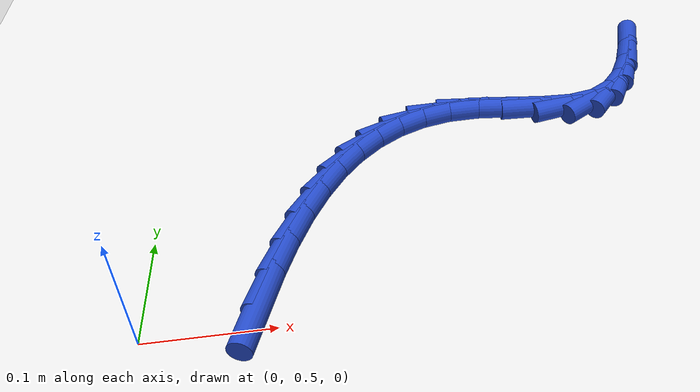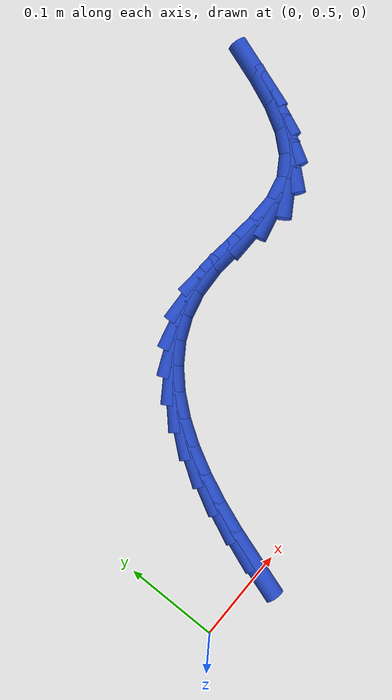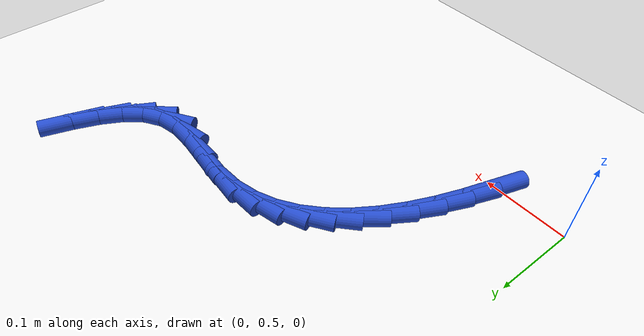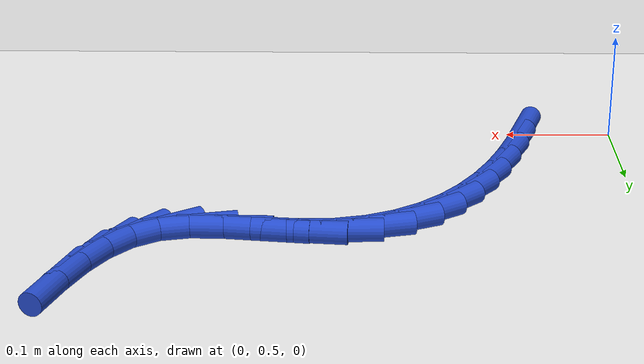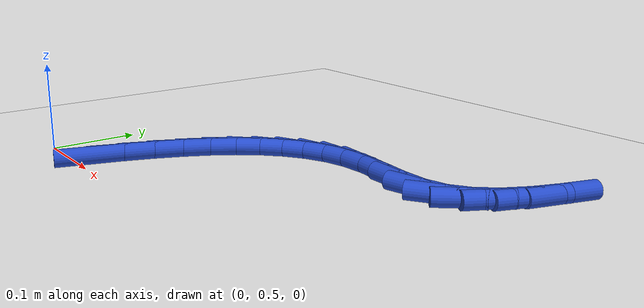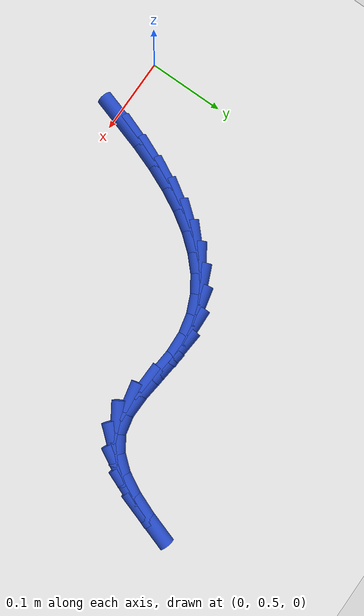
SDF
<sdf version="1.6">
 <world name="default">
  <model name="ground_plane">
   <static>1</static>
   <link name="link">
    <collision name="collision">
     <geometry><plane><normal>0 0 1</normal><size>100 100</size></plane></geometry>
     <surface><friction><ode><mu>100</mu><mu2>50</mu2></ode></friction></surface>
    </collision>
    <visual name="visual">
     <cast_shadows>0</cast_shadows>
     <geometry><plane><normal>0 0 1</normal><size>100 100</size></plane></geometry>
     <material>
      <script><uri>file://media/materials/scripts/gazebo.material</uri><name>Gazebo/WhiteGlow</name></script>
     </material>
    </visual>
   </link>
  </model>
  <model name="line">
   <link name="link_16">
    <pose>0.08562538671919037 0.512777348557157 0.01 0 1.57 1.2690554530625178</pose>
    <collision name="collision">
     <geometry><cylinder><radius>0.01</radius><length>0.08</length></cylinder></geometry>
    </collision>
    <visual name="visual">
     <material>
      <script><name>Gazebo/Blue</name><uri>file://media/materials/scripts/gazebo.material</uri></script>
     </material>
     <geometry><cylinder><radius>0.01</radius><length>0.08</length></cylinder></geometry>
    </visual>
   </link>
   <link name="link_17">
    <pose>0.09598685622375386 0.5460677735126539 0.01 0 1.57 1.2207476960300736</pose>
    <collision name="collision">
     <geometry><cylinder><radius>0.01</radius><length>0.08</length></cylinder></geometry>
    </collision>
    <visual name="visual">
     <material>
      <script><name>Gazebo/Blue</name><uri>file://media/materials/scripts/gazebo.material</uri></script>
     </material>
     <geometry><cylinder><radius>0.01</radius><length>0.08</length></cylinder></geometry>
    </visual>
   </link>
   <link name="link_18">
    <pose>0.10757066834531921 0.5777969772290071 0.01 0 1.57 1.1609644568302275</pose>
    <collision name="collision">
     <geometry><cylinder><radius>0.01</radius><length>0.08</length></cylinder></geometry>
    </collision>
    <visual name="visual">
     <material>
      <script><name>Gazebo/Blue</name><uri>file://media/materials/scripts/gazebo.material</uri></script>
     </material>
     <geometry><cylinder><radius>0.01</radius><length>0.08</length></cylinder></geometry>
    </visual>
   </link>
   <link name="link_19">
    <pose>0.12051874744561092 0.6076016396586195 0.01 0 1.57 1.087122867480417</pose>
    <collision name="collision">
     <geometry><cylinder><radius>0.01</radius><length>0.08</length></cylinder></geometry>
    </collision>
    <visual name="visual">
     <material>
      <script><name>Gazebo/Blue</name><uri>file://media/materials/scripts/gazebo.material</uri></script>
     </material>
     <geometry><cylinder><radius>0.01</radius><length>0.08</length></cylinder></geometry>
    </visual>
   </link>
   <link name="link_20">
    <pose>0.1349730178863535 0.6351184407538936 0.01 0 1.57 0.9961268211682789</pose>
    <collision name="collision">
     <geometry><cylinder><radius>0.01</radius><length>0.08</length></cylinder></geometry>
    </collision>
    <visual name="visual">
     <material>
      <script><name>Gazebo/Blue</name><uri>file://media/materials/scripts/gazebo.material</uri></script>
     </material>
     <geometry><cylinder><radius>0.01</radius><length>0.08</length></cylinder></geometry>
    </visual>
   </link>
   <link name="link_21">
    <pose>0.1510754040292715 0.6599840604672322 0.01 0 1.57 0.8846766165848281</pose>
    <collision name="collision">
     <geometry><cylinder><radius>0.01</radius><length>0.08</length></cylinder></geometry>
    </collision>
    <visual name="visual">
     <material>
      <script><name>Gazebo/Blue</name><uri>file://media/materials/scripts/gazebo.material</uri></script>
     </material>
     <geometry><cylinder><radius>0.01</radius><length>0.08</length></cylinder></geometry>
    </visual>
   </link>
   <link name="link_22">
    <pose>0.16896783023608936 0.6818351787510383 0.01 0 1.57 0.7501340569856699</pose>
    <collision name="collision">
     <geometry><cylinder><radius>0.01</radius><length>0.08</length></cylinder></geometry>
    </collision>
    <visual name="visual">
     <material>
      <script><name>Gazebo/Blue</name><uri>file://media/materials/scripts/gazebo.material</uri></script>
     </material>
     <geometry><cylinder><radius>0.01</radius><length>0.08</length></cylinder></geometry>
    </visual>
   </link>
   <link name="link_23">
    <pose>0.18879222086853165 0.7003084755577142 0.01 0 1.57 0.5922050859885374</pose>
    <collision name="collision">
     <geometry><cylinder><radius>0.01</radius><length>0.08</length></cylinder></geometry>
    </collision>
    <visual name="visual">
     <material>
      <script><name>Gazebo/Blue</name><uri>file://media/materials/scripts/gazebo.material</uri></script>
     </material>
     <geometry><cylinder><radius>0.01</radius><length>0.08</length></cylinder></geometry>
    </visual>
   </link>
   <link name="link_24">
    <pose>0.21069050028832292 0.7150406308396631 0.01 0 1.57 0.41511447473688584</pose>
    <collision name="collision">
     <geometry><cylinder><radius>0.01</radius><length>0.08</length></cylinder></geometry>
    </collision>
    <visual name="visual">
     <material>
      <script><name>Gazebo/Blue</name><uri>file://media/materials/scripts/gazebo.material</uri></script>
     </material>
     <geometry><cylinder><radius>0.01</radius><length>0.08</length></cylinder></geometry>
    </visual>
   </link>
   <link name="link_25">
    <pose>0.23480459285718747 0.7256683245492871 0.01 0 1.57 0.22862825081236965</pose>
    <collision name="collision">
     <geometry><cylinder><radius>0.01</radius><length>0.08</length></cylinder></geometry>
    </collision>
    <visual name="visual">
     <material>
      <script><name>Gazebo/Blue</name><uri>file://media/materials/scripts/gazebo.material</uri></script>
     </material>
     <geometry><cylinder><radius>0.01</radius><length>0.08</length></cylinder></geometry>
    </visual>
   </link>
   <link name="link_26">
    <pose>0.26127642293685016 0.7318282366389899 0.01 0 1.57 0.04611960585594783</pose>
    <collision name="collision">
     <geometry><cylinder><radius>0.01</radius><length>0.08</length></cylinder></geometry>
    </collision>
    <visual name="visual">
     <material>
      <script><name>Gazebo/Blue</name><uri>file://media/materials/scripts/gazebo.material</uri></script>
     </material>
     <geometry><cylinder><radius>0.01</radius><length>0.08</length></cylinder></geometry>
    </visual>
   </link>
   <link name="link_27">
    <pose>0.29024352063674413 0.7331651357716622 0.01 0 1.57 -0.08573914183119526</pose>
    <collision name="collision">
     <geometry><cylinder><radius>0.01</radius><length>0.08</length></cylinder></geometry>
    </collision>
    <visual name="visual">
     <material>
      <script><name>Gazebo/Blue</name><uri>file://media/materials/scripts/gazebo.material</uri></script>
     </material>
     <geometry><cylinder><radius>0.01</radius><length>0.08</length></cylinder></geometry>
    </visual>
   </link>
   <link name="link_28">
    <pose>0.32120212363358647 0.730504248281645 0.01 0 1.57 -0.10950675645461184</pose>
    <collision name="collision">
     <geometry><cylinder><radius>0.01</radius><length>0.08</length></cylinder></geometry>
    </collision>
    <visual name="visual">
     <material>
      <script><name>Gazebo/Blue</name><uri>file://media/materials/scripts/gazebo.material</uri></script>
     </material>
     <geometry><cylinder><radius>0.01</radius><length>0.08</length></cylinder></geometry>
    </visual>
   </link>
   <link name="link_29">
    <pose>0.3523392016494445 0.7270808326854729 0.01 0 1.57 -0.022375400842900094</pose>
    <collision name="collision">
     <geometry><cylinder><radius>0.01</radius><length>0.08</length></cylinder></geometry>
    </collision>
    <visual name="visual">
     <material>
      <script><name>Gazebo/Blue</name><uri>file://media/materials/scripts/gazebo.material</uri></script>
     </material>
     <geometry><cylinder><radius>0.01</radius><length>0.08</length></cylinder></geometry>
    </visual>
   </link>
   <link name="link_30">
    <pose>0.38168199650246754 0.7264241662965774 0.01 0 1.57 0.21566609764095812</pose>
    <collision name="collision">
     <geometry><cylinder><radius>0.01</radius><length>0.08</length></cylinder></geometry>
    </collision>
    <visual name="visual">
     <material>
      <script><name>Gazebo/Blue</name><uri>file://media/materials/scripts/gazebo.material</uri></script>
     </material>
     <geometry><cylinder><radius>0.01</radius><length>0.08</length></cylinder></geometry>
    </visual>
   </link>
   <link name="link_31">
    <pose>0.4072762555149851 0.7320311819334352 0.01 0 1.57 0.5729073200740039</pose>
    <collision name="collision">
     <geometry><cylinder><radius>0.01</radius><length>0.08</length></cylinder></geometry>
    </collision>
    <visual name="visual">
     <material>
      <script><name>Gazebo/Blue</name><uri>file://media/materials/scripts/gazebo.material</uri></script>
     </material>
     <geometry><cylinder><radius>0.01</radius><length>0.08</length></cylinder></geometry>
    </visual>
   </link>
   <link name="link_32">
    <pose>0.42822755765998144 0.745546405739186 0.01 0 1.57 0.87151933151094</pose>
    <collision name="collision">
     <geometry><cylinder><radius>0.01</radius><length>0.08</length></cylinder></geometry>
    </collision>
    <visual name="visual">
     <material>
      <script><name>Gazebo/Blue</name><uri>file://media/materials/scripts/gazebo.material</uri></script>
     </material>
     <geometry><cylinder><radius>0.01</radius><length>0.08</length></cylinder></geometry>
    </visual>
   </link>
   <link name="link_33">
    <pose>0.44525582404270675 0.7657927665398421 0.01 0 1.57 1.0709350997753495</pose>
    <collision name="collision">
     <geometry><cylinder><radius>0.01</radius><length>0.08</length></cylinder></geometry>
    </collision>
    <visual name="visual">
     <material>
      <script><name>Gazebo/Blue</name><uri>file://media/materials/scripts/gazebo.material</uri></script>
     </material>
     <geometry><cylinder><radius>0.01</radius><length>0.08</length></cylinder></geometry>
    </visual>
   </link>
   <link name="link_34">
    <pose>0.45921657718199627 0.7913561847992339 0.01 0 1.57 1.191396200107836</pose>
    <collision name="collision">
     <geometry><cylinder><radius>0.01</radius><length>0.08</length></cylinder></geometry>
    </collision>
    <visual name="visual">
     <material>
      <script><name>Gazebo/Blue</name><uri>file://media/materials/scripts/gazebo.material</uri></script>
     </material>
     <geometry><cylinder><radius>0.01</radius><length>0.08</length></cylinder></geometry>
    </visual>
   </link>
   <link name="link_35">
    <pose>0.47096533959668585 0.8208225809811924 0.01 0 1.57 1.2563713075496996</pose>
    <collision name="collision">
     <geometry><cylinder><radius>0.01</radius><length>0.08</length></cylinder></geometry>
    </collision>
    <visual name="visual">
     <material>
      <script><name>Gazebo/Blue</name><uri>file://media/materials/scripts/gazebo.material</uri></script>
     </material>
     <geometry><cylinder><radius>0.01</radius><length>0.08</length></cylinder></geometry>
    </visual>
   </link>
  </model>
 </world>
</sdf>
